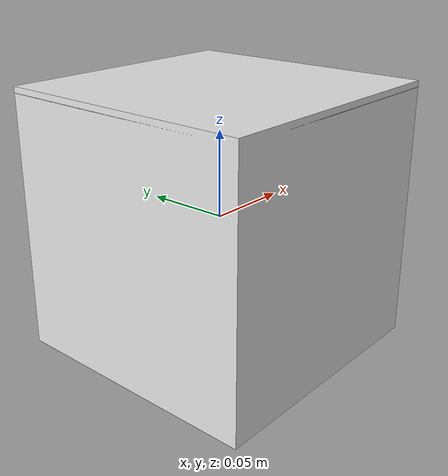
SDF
<sdf version="1.8">
  <model name="aruco_box_0">
    <static>false</static>
    <link name="link">
      <inertial>
        <mass>0.05</mass>
        <inertia><ixx>0.0001</ixx><iyy>0.0001</iyy><izz>0.0001</izz>
                  <ixy>0</ixy><ixz>0</ixz><iyz>0</iyz></inertia>
      </inertial>

      <collision name="collision">
        <geometry><box><size>0.15 0.15 0.15</size></box></geometry>
      </collision>

      <visual name="body_visual">
        <geometry><box><size>0.15 0.15 0.15</size></box></geometry>
        <material>
          <ambient>0.9 0.9 0.9 1</ambient>
          <diffuse>0.9 0.9 0.9 1</diffuse>
        </material>
      </visual>

      <visual name="marker_visual">
        <pose>0 0 0.0715 0 0 0</pose>
        <geometry><box><size>0.15 0.15 0.0002</size></box></geometry>
        <material>
          <pbr>
            <metal>
              <albedo_map>materials/textures/marker_0.png</albedo_map>
              <roughness>1.0</roughness>
            </metal>
          </pbr>
        </material>
      </visual>
    </link>
  </model>
</sdf>
